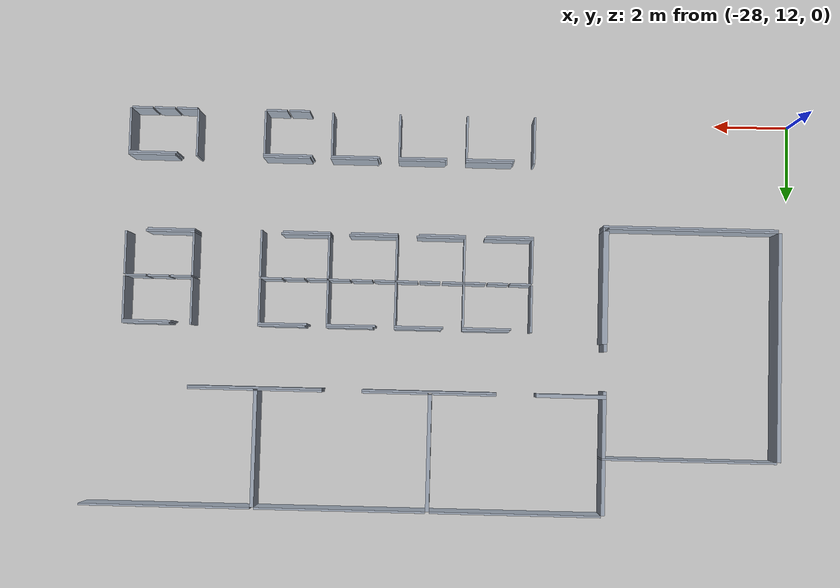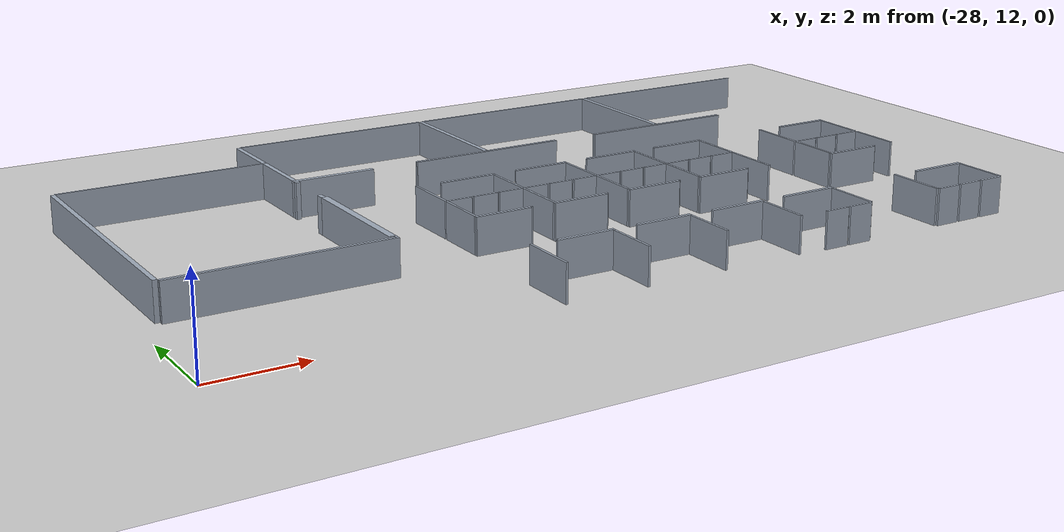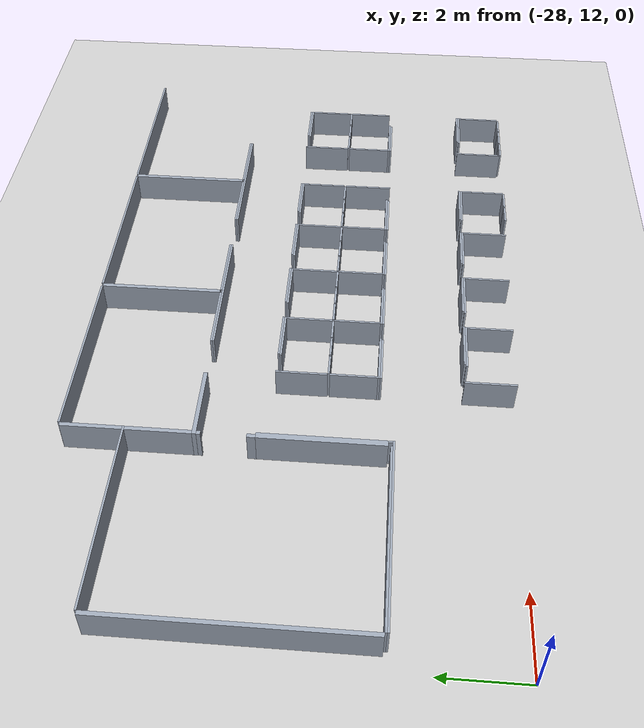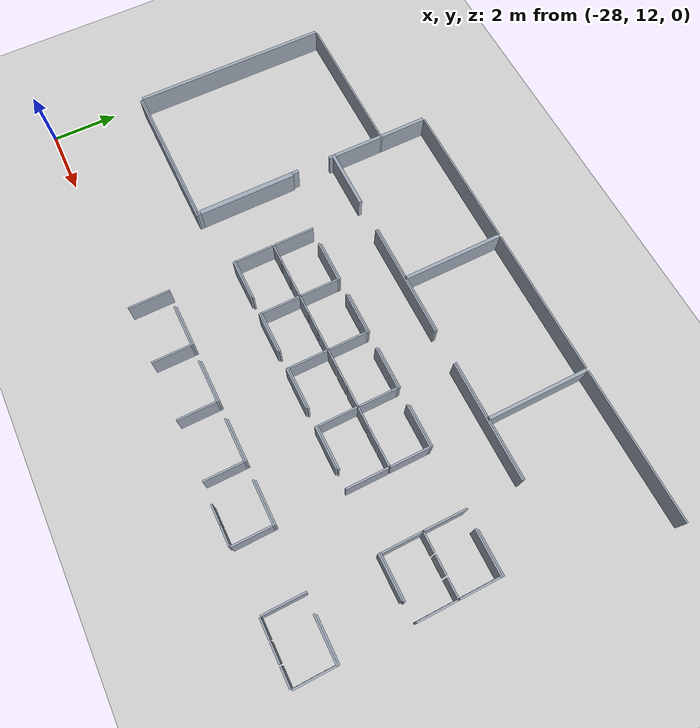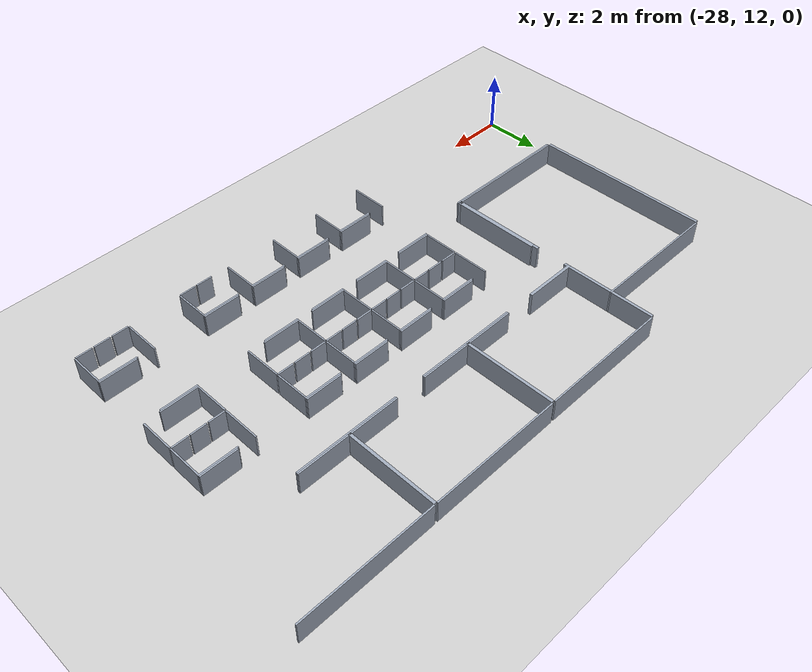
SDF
<sdf version="1.6">
 <world name="default">
  <include><uri>model://ground_plane</uri></include>
  <include><uri>model://sun</uri></include>
  <model name="slam_office_obstacles">
   <static>true</static>
   <link name="wall_0">
    <pose>-20.7000 22.5750 0.4 0 0 0</pose>
    <collision name="collision"><geometry><box><size>4.5000 0.0500 0.8</size></box></geometry></collision>
    <visual name="visual">
     <geometry><box><size>4.5000 0.0500 0.8</size></box></geometry>
     <material><ambient>0.62 0.66 0.72 1</ambient><diffuse>0.62 0.66 0.72 1</diffuse></material>
    </visual>
   </link>
   <link name="wall_1">
    <pose>-16.1000 22.5750 0.4 0 0 0</pose>
    <collision name="collision"><geometry><box><size>4.5000 0.0500 0.8</size></box></geometry></collision>
    <visual name="visual">
     <geometry><box><size>4.5000 0.0500 0.8</size></box></geometry>
     <material><ambient>0.62 0.66 0.72 1</ambient><diffuse>0.62 0.66 0.72 1</diffuse></material>
    </visual>
   </link>
   <link name="wall_2">
    <pose>-11.5000 22.5750 0.4 0 0 0</pose>
    <collision name="collision"><geometry><box><size>4.5000 0.0500 0.8</size></box></geometry></collision>
    <visual name="visual">
     <geometry><box><size>4.5000 0.0500 0.8</size></box></geometry>
     <material><ambient>0.62 0.66 0.72 1</ambient><diffuse>0.62 0.66 0.72 1</diffuse></material>
    </visual>
   </link>
   <link name="wall_9">
    <pose>-23.0000 21.8250 0.4 0 0 0</pose>
    <collision name="collision"><geometry><box><size>0.1000 1.4500 0.8</size></box></geometry></collision>
    <visual name="visual">
     <geometry><box><size>0.1000 1.4500 0.8</size></box></geometry>
     <material><ambient>0.62 0.66 0.72 1</ambient><diffuse>0.62 0.66 0.72 1</diffuse></material>
    </visual>
   </link>
   <link name="wall_10">
    <pose>-25.2500 21.0750 0.4 0 0 0</pose>
    <collision name="collision"><geometry><box><size>4.6000 0.0500 0.8</size></box></geometry></collision>
    <visual name="visual">
     <geometry><box><size>4.6000 0.0500 0.8</size></box></geometry>
     <material><ambient>0.62 0.66 0.72 1</ambient><diffuse>0.62 0.66 0.72 1</diffuse></material>
    </visual>
   </link>
   <link name="wall_11">
    <pose>-18.4000 21.0250 0.4 0 0 0</pose>
    <collision name="collision"><geometry><box><size>0.1000 3.0500 0.8</size></box></geometry></collision>
    <visual name="visual">
     <geometry><box><size>0.1000 3.0500 0.8</size></box></geometry>
     <material><ambient>0.62 0.66 0.72 1</ambient><diffuse>0.62 0.66 0.72 1</diffuse></material>
    </visual>
   </link>
   <link name="wall_12">
    <pose>-13.8000 21.0250 0.4 0 0 0</pose>
    <collision name="collision"><geometry><box><size>0.1000 3.0500 0.8</size></box></geometry></collision>
    <visual name="visual">
     <geometry><box><size>0.1000 3.0500 0.8</size></box></geometry>
     <material><ambient>0.62 0.66 0.72 1</ambient><diffuse>0.62 0.66 0.72 1</diffuse></material>
    </visual>
   </link>
   <link name="wall_19">
    <pose>-23.0000 20.2750 0.4 0 0 0</pose>
    <collision name="collision"><geometry><box><size>0.1000 1.5500 0.8</size></box></geometry></collision>
    <visual name="visual">
     <geometry><box><size>0.1000 1.5500 0.8</size></box></geometry>
     <material><ambient>0.62 0.66 0.72 1</ambient><diffuse>0.62 0.66 0.72 1</diffuse></material>
    </visual>
   </link>
   <link name="wall_20">
    <pose>-19.3000 19.4750 0.4 0 0 0</pose>
    <collision name="collision"><geometry><box><size>1.7000 0.0500 0.8</size></box></geometry></collision>
    <visual name="visual">
     <geometry><box><size>1.7000 0.0500 0.8</size></box></geometry>
     <material><ambient>0.62 0.66 0.72 1</ambient><diffuse>0.62 0.66 0.72 1</diffuse></material>
    </visual>
   </link>
   <link name="wall_21">
    <pose>-17.4750 19.4750 0.4 0 0 0</pose>
    <collision name="collision"><geometry><box><size>1.7500 0.0500 0.8</size></box></geometry></collision>
    <visual name="visual">
     <geometry><box><size>1.7500 0.0500 0.8</size></box></geometry>
     <material><ambient>0.62 0.66 0.72 1</ambient><diffuse>0.62 0.66 0.72 1</diffuse></material>
    </visual>
   </link>
   <link name="wall_22">
    <pose>-14.7000 19.4750 0.4 0 0 0</pose>
    <collision name="collision"><geometry><box><size>1.7000 0.0500 0.8</size></box></geometry></collision>
    <visual name="visual">
     <geometry><box><size>1.7000 0.0500 0.8</size></box></geometry>
     <material><ambient>0.62 0.66 0.72 1</ambient><diffuse>0.62 0.66 0.72 1</diffuse></material>
    </visual>
   </link>
   <link name="wall_23">
    <pose>-12.8750 19.4750 0.4 0 0 0</pose>
    <collision name="collision"><geometry><box><size>1.7500 0.0500 0.8</size></box></geometry></collision>
    <visual name="visual">
     <geometry><box><size>1.7500 0.0500 0.8</size></box></geometry>
     <material><ambient>0.62 0.66 0.72 1</ambient><diffuse>0.62 0.66 0.72 1</diffuse></material>
    </visual>
   </link>
   <link name="wall_34">
    <pose>-22.1250 19.4500 0.4 0 0 0</pose>
    <collision name="collision"><geometry><box><size>1.8500 0.1000 0.8</size></box></geometry></collision>
    <visual name="visual">
     <geometry><box><size>1.8500 0.1000 0.8</size></box></geometry>
     <material><ambient>0.62 0.66 0.72 1</ambient><diffuse>0.62 0.66 0.72 1</diffuse></material>
    </visual>
   </link>
   <link name="wall_36">
    <pose>-18.3750 19.4250 0.4 0 0 0</pose>
    <collision name="collision"><geometry><box><size>3.5500 0.0500 0.8</size></box></geometry></collision>
    <visual name="visual">
     <geometry><box><size>3.5500 0.0500 0.8</size></box></geometry>
     <material><ambient>0.62 0.66 0.72 1</ambient><diffuse>0.62 0.66 0.72 1</diffuse></material>
    </visual>
   </link>
   <link name="wall_37">
    <pose>-13.7750 19.4250 0.4 0 0 0</pose>
    <collision name="collision"><geometry><box><size>3.5500 0.0500 0.8</size></box></geometry></collision>
    <visual name="visual">
     <geometry><box><size>3.5500 0.0500 0.8</size></box></geometry>
     <material><ambient>0.62 0.66 0.72 1</ambient><diffuse>0.62 0.66 0.72 1</diffuse></material>
    </visual>
   </link>
   <link name="wall_43">
    <pose>-23.0000 19.3500 0.4 0 0 0</pose>
    <collision name="collision"><geometry><box><size>0.1000 0.1000 0.8</size></box></geometry></collision>
    <visual name="visual">
     <geometry><box><size>0.1000 0.1000 0.8</size></box></geometry>
     <material><ambient>0.62 0.66 0.72 1</ambient><diffuse>0.62 0.66 0.72 1</diffuse></material>
    </visual>
   </link>
   <link name="wall_44">
    <pose>-23.0000 18.1500 0.4 0 0 0</pose>
    <collision name="collision"><geometry><box><size>0.1000 0.2000 0.8</size></box></geometry></collision>
    <visual name="visual">
     <geometry><box><size>0.1000 0.2000 0.8</size></box></geometry>
     <material><ambient>0.62 0.66 0.72 1</ambient><diffuse>0.62 0.66 0.72 1</diffuse></material>
    </visual>
   </link>
   <link name="wall_45">
    <pose>-19.8250 17.7750 0.4 0 0 0</pose>
    <collision name="collision"><geometry><box><size>1.2500 0.0500 0.8</size></box></geometry></collision>
    <visual name="visual">
     <geometry><box><size>1.2500 0.0500 0.8</size></box></geometry>
     <material><ambient>0.62 0.66 0.72 1</ambient><diffuse>0.62 0.66 0.72 1</diffuse></material>
    </visual>
   </link>
   <link name="wall_46">
    <pose>-18.0250 17.7750 0.4 0 0 0</pose>
    <collision name="collision"><geometry><box><size>1.2500 0.0500 0.8</size></box></geometry></collision>
    <visual name="visual">
     <geometry><box><size>1.2500 0.0500 0.8</size></box></geometry>
     <material><ambient>0.62 0.66 0.72 1</ambient><diffuse>0.62 0.66 0.72 1</diffuse></material>
    </visual>
   </link>
   <link name="wall_47">
    <pose>-16.2250 17.7750 0.4 0 0 0</pose>
    <collision name="collision"><geometry><box><size>1.2500 0.0500 0.8</size></box></geometry></collision>
    <visual name="visual">
     <geometry><box><size>1.2500 0.0500 0.8</size></box></geometry>
     <material><ambient>0.62 0.66 0.72 1</ambient><diffuse>0.62 0.66 0.72 1</diffuse></material>
    </visual>
   </link>
   <link name="wall_48">
    <pose>-14.4250 17.7750 0.4 0 0 0</pose>
    <collision name="collision"><geometry><box><size>1.2500 0.0500 0.8</size></box></geometry></collision>
    <visual name="visual">
     <geometry><box><size>1.2500 0.0500 0.8</size></box></geometry>
     <material><ambient>0.62 0.66 0.72 1</ambient><diffuse>0.62 0.66 0.72 1</diffuse></material>
    </visual>
   </link>
   <link name="wall_49">
    <pose>-10.8250 17.7750 0.4 0 0 0</pose>
    <collision name="collision"><geometry><box><size>1.2500 0.0500 0.8</size></box></geometry></collision>
    <visual name="visual">
     <geometry><box><size>1.2500 0.0500 0.8</size></box></geometry>
     <material><ambient>0.62 0.66 0.72 1</ambient><diffuse>0.62 0.66 0.72 1</diffuse></material>
    </visual>
   </link>
   <link name="wall_52">
    <pose>-19.8500 17.7250 0.4 0 0 0</pose>
    <collision name="collision"><geometry><box><size>1.3000 0.0500 0.8</size></box></geometry></collision>
    <visual name="visual">
     <geometry><box><size>1.3000 0.0500 0.8</size></box></geometry>
     <material><ambient>0.62 0.66 0.72 1</ambient><diffuse>0.62 0.66 0.72 1</diffuse></material>
    </visual>
   </link>
   <link name="wall_53">
    <pose>-18.0500 17.7250 0.4 0 0 0</pose>
    <collision name="collision"><geometry><box><size>1.3000 0.0500 0.8</size></box></geometry></collision>
    <visual name="visual">
     <geometry><box><size>1.3000 0.0500 0.8</size></box></geometry>
     <material><ambient>0.62 0.66 0.72 1</ambient><diffuse>0.62 0.66 0.72 1</diffuse></material>
    </visual>
   </link>
   <link name="wall_54">
    <pose>-16.2500 17.7250 0.4 0 0 0</pose>
    <collision name="collision"><geometry><box><size>1.3000 0.0500 0.8</size></box></geometry></collision>
    <visual name="visual">
     <geometry><box><size>1.3000 0.0500 0.8</size></box></geometry>
     <material><ambient>0.62 0.66 0.72 1</ambient><diffuse>0.62 0.66 0.72 1</diffuse></material>
    </visual>
   </link>
   <link name="wall_55">
    <pose>-14.4500 17.7250 0.4 0 0 0</pose>
    <collision name="collision"><geometry><box><size>1.3000 0.0500 0.8</size></box></geometry></collision>
    <visual name="visual">
     <geometry><box><size>1.3000 0.0500 0.8</size></box></geometry>
     <material><ambient>0.62 0.66 0.72 1</ambient><diffuse>0.62 0.66 0.72 1</diffuse></material>
    </visual>
   </link>
   <link name="wall_56">
    <pose>-10.8500 17.7250 0.4 0 0 0</pose>
    <collision name="collision"><geometry><box><size>1.3000 0.0500 0.8</size></box></geometry></collision>
    <visual name="visual">
     <geometry><box><size>1.3000 0.0500 0.8</size></box></geometry>
     <material><ambient>0.62 0.66 0.72 1</ambient><diffuse>0.62 0.66 0.72 1</diffuse></material>
    </visual>
   </link>
   <link name="wall_64">
    <pose>-21.0250 17.1750 0.4 0 0 0</pose>
    <collision name="collision"><geometry><box><size>0.0500 1.2500 0.8</size></box></geometry></collision>
    <visual name="visual">
     <geometry><box><size>0.0500 1.2500 0.8</size></box></geometry>
     <material><ambient>0.62 0.66 0.72 1</ambient><diffuse>0.62 0.66 0.72 1</diffuse></material>
    </visual>
   </link>
   <link name="wall_65">
    <pose>-12.0250 17.1750 0.4 0 0 0</pose>
    <collision name="collision"><geometry><box><size>0.0500 1.2500 0.8</size></box></geometry></collision>
    <visual name="visual">
     <geometry><box><size>0.0500 1.2500 0.8</size></box></geometry>
     <material><ambient>0.62 0.66 0.72 1</ambient><diffuse>0.62 0.66 0.72 1</diffuse></material>
    </visual>
   </link>
   <link name="wall_66">
    <pose>-19.2250 17.1250 0.4 0 0 0</pose>
    <collision name="collision"><geometry><box><size>0.0500 1.1500 0.8</size></box></geometry></collision>
    <visual name="visual">
     <geometry><box><size>0.0500 1.1500 0.8</size></box></geometry>
     <material><ambient>0.62 0.66 0.72 1</ambient><diffuse>0.62 0.66 0.72 1</diffuse></material>
    </visual>
   </link>
   <link name="wall_67">
    <pose>-17.4250 17.1250 0.4 0 0 0</pose>
    <collision name="collision"><geometry><box><size>0.0500 1.1500 0.8</size></box></geometry></collision>
    <visual name="visual">
     <geometry><box><size>0.0500 1.1500 0.8</size></box></geometry>
     <material><ambient>0.62 0.66 0.72 1</ambient><diffuse>0.62 0.66 0.72 1</diffuse></material>
    </visual>
   </link>
   <link name="wall_68">
    <pose>-15.6250 17.1250 0.4 0 0 0</pose>
    <collision name="collision"><geometry><box><size>0.0500 1.1500 0.8</size></box></geometry></collision>
    <visual name="visual">
     <geometry><box><size>0.0500 1.1500 0.8</size></box></geometry>
     <material><ambient>0.62 0.66 0.72 1</ambient><diffuse>0.62 0.66 0.72 1</diffuse></material>
    </visual>
   </link>
   <link name="wall_69">
    <pose>-13.8250 17.1250 0.4 0 0 0</pose>
    <collision name="collision"><geometry><box><size>0.0500 1.1500 0.8</size></box></geometry></collision>
    <visual name="visual">
     <geometry><box><size>0.0500 1.1500 0.8</size></box></geometry>
     <material><ambient>0.62 0.66 0.72 1</ambient><diffuse>0.62 0.66 0.72 1</diffuse></material>
    </visual>
   </link>
   <link name="wall_70">
    <pose>-10.2250 17.1250 0.4 0 0 0</pose>
    <collision name="collision"><geometry><box><size>0.0500 1.1500 0.8</size></box></geometry></collision>
    <visual name="visual">
     <geometry><box><size>0.0500 1.1500 0.8</size></box></geometry>
     <material><ambient>0.62 0.66 0.72 1</ambient><diffuse>0.62 0.66 0.72 1</diffuse></material>
    </visual>
   </link>
   <link name="wall_75">
    <pose>-20.7250 16.5250 0.4 0 0 0</pose>
    <collision name="collision"><geometry><box><size>0.5500 0.0500 0.8</size></box></geometry></collision>
    <visual name="visual">
     <geometry><box><size>0.5500 0.0500 0.8</size></box></geometry>
     <material><ambient>0.62 0.66 0.72 1</ambient><diffuse>0.62 0.66 0.72 1</diffuse></material>
    </visual>
   </link>
   <link name="wall_76">
    <pose>-20.1250 16.5250 0.4 0 0 0</pose>
    <collision name="collision"><geometry><box><size>0.5500 0.0500 0.8</size></box></geometry></collision>
    <visual name="visual">
     <geometry><box><size>0.5500 0.0500 0.8</size></box></geometry>
     <material><ambient>0.62 0.66 0.72 1</ambient><diffuse>0.62 0.66 0.72 1</diffuse></material>
    </visual>
   </link>
   <link name="wall_77">
    <pose>-19.5250 16.5250 0.4 0 0 0</pose>
    <collision name="collision"><geometry><box><size>0.5500 0.0500 0.8</size></box></geometry></collision>
    <visual name="visual">
     <geometry><box><size>0.5500 0.0500 0.8</size></box></geometry>
     <material><ambient>0.62 0.66 0.72 1</ambient><diffuse>0.62 0.66 0.72 1</diffuse></material>
    </visual>
   </link>
   <link name="wall_78">
    <pose>-18.9250 16.5250 0.4 0 0 0</pose>
    <collision name="collision"><geometry><box><size>0.5500 0.0500 0.8</size></box></geometry></collision>
    <visual name="visual">
     <geometry><box><size>0.5500 0.0500 0.8</size></box></geometry>
     <material><ambient>0.62 0.66 0.72 1</ambient><diffuse>0.62 0.66 0.72 1</diffuse></material>
    </visual>
   </link>
   <link name="wall_79">
    <pose>-18.3250 16.5250 0.4 0 0 0</pose>
    <collision name="collision"><geometry><box><size>0.5500 0.0500 0.8</size></box></geometry></collision>
    <visual name="visual">
     <geometry><box><size>0.5500 0.0500 0.8</size></box></geometry>
     <material><ambient>0.62 0.66 0.72 1</ambient><diffuse>0.62 0.66 0.72 1</diffuse></material>
    </visual>
   </link>
   <link name="wall_80">
    <pose>-17.7250 16.5250 0.4 0 0 0</pose>
    <collision name="collision"><geometry><box><size>0.5500 0.0500 0.8</size></box></geometry></collision>
    <visual name="visual">
     <geometry><box><size>0.5500 0.0500 0.8</size></box></geometry>
     <material><ambient>0.62 0.66 0.72 1</ambient><diffuse>0.62 0.66 0.72 1</diffuse></material>
    </visual>
   </link>
   <link name="wall_81">
    <pose>-17.1250 16.5250 0.4 0 0 0</pose>
    <collision name="collision"><geometry><box><size>0.5500 0.0500 0.8</size></box></geometry></collision>
    <visual name="visual">
     <geometry><box><size>0.5500 0.0500 0.8</size></box></geometry>
     <material><ambient>0.62 0.66 0.72 1</ambient><diffuse>0.62 0.66 0.72 1</diffuse></material>
    </visual>
   </link>
   <link name="wall_82">
    <pose>-16.5250 16.5250 0.4 0 0 0</pose>
    <collision name="collision"><geometry><box><size>0.5500 0.0500 0.8</size></box></geometry></collision>
    <visual name="visual">
     <geometry><box><size>0.5500 0.0500 0.8</size></box></geometry>
     <material><ambient>0.62 0.66 0.72 1</ambient><diffuse>0.62 0.66 0.72 1</diffuse></material>
    </visual>
   </link>
   <link name="wall_83">
    <pose>-15.9250 16.5250 0.4 0 0 0</pose>
    <collision name="collision"><geometry><box><size>0.5500 0.0500 0.8</size></box></geometry></collision>
    <visual name="visual">
     <geometry><box><size>0.5500 0.0500 0.8</size></box></geometry>
     <material><ambient>0.62 0.66 0.72 1</ambient><diffuse>0.62 0.66 0.72 1</diffuse></material>
    </visual>
   </link>
   <link name="wall_84">
    <pose>-15.3250 16.5250 0.4 0 0 0</pose>
    <collision name="collision"><geometry><box><size>0.5500 0.0500 0.8</size></box></geometry></collision>
    <visual name="visual">
     <geometry><box><size>0.5500 0.0500 0.8</size></box></geometry>
     <material><ambient>0.62 0.66 0.72 1</ambient><diffuse>0.62 0.66 0.72 1</diffuse></material>
    </visual>
   </link>
   <link name="wall_85">
    <pose>-14.7250 16.5250 0.4 0 0 0</pose>
    <collision name="collision"><geometry><box><size>0.5500 0.0500 0.8</size></box></geometry></collision>
    <visual name="visual">
     <geometry><box><size>0.5500 0.0500 0.8</size></box></geometry>
     <material><ambient>0.62 0.66 0.72 1</ambient><diffuse>0.62 0.66 0.72 1</diffuse></material>
    </visual>
   </link>
   <link name="wall_86">
    <pose>-14.1250 16.5250 0.4 0 0 0</pose>
    <collision name="collision"><geometry><box><size>0.5500 0.0500 0.8</size></box></geometry></collision>
    <visual name="visual">
     <geometry><box><size>0.5500 0.0500 0.8</size></box></geometry>
     <material><ambient>0.62 0.66 0.72 1</ambient><diffuse>0.62 0.66 0.72 1</diffuse></material>
    </visual>
   </link>
   <link name="wall_87">
    <pose>-11.7250 16.5250 0.4 0 0 0</pose>
    <collision name="collision"><geometry><box><size>0.5500 0.0500 0.8</size></box></geometry></collision>
    <visual name="visual">
     <geometry><box><size>0.5500 0.0500 0.8</size></box></geometry>
     <material><ambient>0.62 0.66 0.72 1</ambient><diffuse>0.62 0.66 0.72 1</diffuse></material>
    </visual>
   </link>
   <link name="wall_88">
    <pose>-11.1250 16.5250 0.4 0 0 0</pose>
    <collision name="collision"><geometry><box><size>0.5500 0.0500 0.8</size></box></geometry></collision>
    <visual name="visual">
     <geometry><box><size>0.5500 0.0500 0.8</size></box></geometry>
     <material><ambient>0.62 0.66 0.72 1</ambient><diffuse>0.62 0.66 0.72 1</diffuse></material>
    </visual>
   </link>
   <link name="wall_89">
    <pose>-10.5250 16.5250 0.4 0 0 0</pose>
    <collision name="collision"><geometry><box><size>0.5500 0.0500 0.8</size></box></geometry></collision>
    <visual name="visual">
     <geometry><box><size>0.5500 0.0500 0.8</size></box></geometry>
     <material><ambient>0.62 0.66 0.72 1</ambient><diffuse>0.62 0.66 0.72 1</diffuse></material>
    </visual>
   </link>
   <link name="wall_103">
    <pose>-21.0250 15.9250 0.4 0 0 0</pose>
    <collision name="collision"><geometry><box><size>0.0500 1.1500 0.8</size></box></geometry></collision>
    <visual name="visual">
     <geometry><box><size>0.0500 1.1500 0.8</size></box></geometry>
     <material><ambient>0.62 0.66 0.72 1</ambient><diffuse>0.62 0.66 0.72 1</diffuse></material>
    </visual>
   </link>
   <link name="wall_104">
    <pose>-19.2250 15.9250 0.4 0 0 0</pose>
    <collision name="collision"><geometry><box><size>0.0500 1.1500 0.8</size></box></geometry></collision>
    <visual name="visual">
     <geometry><box><size>0.0500 1.1500 0.8</size></box></geometry>
     <material><ambient>0.62 0.66 0.72 1</ambient><diffuse>0.62 0.66 0.72 1</diffuse></material>
    </visual>
   </link>
   <link name="wall_105">
    <pose>-17.4250 15.9250 0.4 0 0 0</pose>
    <collision name="collision"><geometry><box><size>0.0500 1.1500 0.8</size></box></geometry></collision>
    <visual name="visual">
     <geometry><box><size>0.0500 1.1500 0.8</size></box></geometry>
     <material><ambient>0.62 0.66 0.72 1</ambient><diffuse>0.62 0.66 0.72 1</diffuse></material>
    </visual>
   </link>
   <link name="wall_106">
    <pose>-15.6250 15.9250 0.4 0 0 0</pose>
    <collision name="collision"><geometry><box><size>0.0500 1.1500 0.8</size></box></geometry></collision>
    <visual name="visual">
     <geometry><box><size>0.0500 1.1500 0.8</size></box></geometry>
     <material><ambient>0.62 0.66 0.72 1</ambient><diffuse>0.62 0.66 0.72 1</diffuse></material>
    </visual>
   </link>
   <link name="wall_107">
    <pose>-12.0250 15.9250 0.4 0 0 0</pose>
    <collision name="collision"><geometry><box><size>0.0500 1.1500 0.8</size></box></geometry></collision>
    <visual name="visual">
     <geometry><box><size>0.0500 1.1500 0.8</size></box></geometry>
     <material><ambient>0.62 0.66 0.72 1</ambient><diffuse>0.62 0.66 0.72 1</diffuse></material>
    </visual>
   </link>
   <link name="wall_108">
    <pose>-10.2250 15.9250 0.4 0 0 0</pose>
    <collision name="collision"><geometry><box><size>0.0500 1.1500 0.8</size></box></geometry></collision>
    <visual name="visual">
     <geometry><box><size>0.0500 1.1500 0.8</size></box></geometry>
     <material><ambient>0.62 0.66 0.72 1</ambient><diffuse>0.62 0.66 0.72 1</diffuse></material>
    </visual>
   </link>
   <link name="wall_110">
    <pose>-20.4000 15.3250 0.4 0 0 0</pose>
    <collision name="collision"><geometry><box><size>1.3000 0.0500 0.8</size></box></geometry></collision>
    <visual name="visual">
     <geometry><box><size>1.3000 0.0500 0.8</size></box></geometry>
     <material><ambient>0.62 0.66 0.72 1</ambient><diffuse>0.62 0.66 0.72 1</diffuse></material>
    </visual>
   </link>
   <link name="wall_111">
    <pose>-18.6000 15.3250 0.4 0 0 0</pose>
    <collision name="collision"><geometry><box><size>1.3000 0.0500 0.8</size></box></geometry></collision>
    <visual name="visual">
     <geometry><box><size>1.3000 0.0500 0.8</size></box></geometry>
     <material><ambient>0.62 0.66 0.72 1</ambient><diffuse>0.62 0.66 0.72 1</diffuse></material>
    </visual>
   </link>
   <link name="wall_112">
    <pose>-16.8000 15.3250 0.4 0 0 0</pose>
    <collision name="collision"><geometry><box><size>1.3000 0.0500 0.8</size></box></geometry></collision>
    <visual name="visual">
     <geometry><box><size>1.3000 0.0500 0.8</size></box></geometry>
     <material><ambient>0.62 0.66 0.72 1</ambient><diffuse>0.62 0.66 0.72 1</diffuse></material>
    </visual>
   </link>
   <link name="wall_113">
    <pose>-15.0000 15.3250 0.4 0 0 0</pose>
    <collision name="collision"><geometry><box><size>1.3000 0.0500 0.8</size></box></geometry></collision>
    <visual name="visual">
     <geometry><box><size>1.3000 0.0500 0.8</size></box></geometry>
     <material><ambient>0.62 0.66 0.72 1</ambient><diffuse>0.62 0.66 0.72 1</diffuse></material>
    </visual>
   </link>
   <link name="wall_114">
    <pose>-11.4000 15.3250 0.4 0 0 0</pose>
    <collision name="collision"><geometry><box><size>1.3000 0.0500 0.8</size></box></geometry></collision>
    <visual name="visual">
     <geometry><box><size>1.3000 0.0500 0.8</size></box></geometry>
     <material><ambient>0.62 0.66 0.72 1</ambient><diffuse>0.62 0.66 0.72 1</diffuse></material>
    </visual>
   </link>
   <link name="wall_117">
    <pose>-13.8250 15.8750 0.4 0 0 0</pose>
    <collision name="collision"><geometry><box><size>0.0500 1.2500 0.8</size></box></geometry></collision>
    <visual name="visual">
     <geometry><box><size>0.0500 1.2500 0.8</size></box></geometry>
     <material><ambient>0.62 0.66 0.72 1</ambient><diffuse>0.62 0.66 0.72 1</diffuse></material>
    </visual>
   </link>
   <link name="wall_119">
    <pose>-20.4250 15.2750 0.4 0 0 0</pose>
    <collision name="collision"><geometry><box><size>1.2500 0.0500 0.8</size></box></geometry></collision>
    <visual name="visual">
     <geometry><box><size>1.2500 0.0500 0.8</size></box></geometry>
     <material><ambient>0.62 0.66 0.72 1</ambient><diffuse>0.62 0.66 0.72 1</diffuse></material>
    </visual>
   </link>
   <link name="wall_120">
    <pose>-18.6250 15.2750 0.4 0 0 0</pose>
    <collision name="collision"><geometry><box><size>1.2500 0.0500 0.8</size></box></geometry></collision>
    <visual name="visual">
     <geometry><box><size>1.2500 0.0500 0.8</size></box></geometry>
     <material><ambient>0.62 0.66 0.72 1</ambient><diffuse>0.62 0.66 0.72 1</diffuse></material>
    </visual>
   </link>
   <link name="wall_121">
    <pose>-16.8250 15.2750 0.4 0 0 0</pose>
    <collision name="collision"><geometry><box><size>1.2500 0.0500 0.8</size></box></geometry></collision>
    <visual name="visual">
     <geometry><box><size>1.2500 0.0500 0.8</size></box></geometry>
     <material><ambient>0.62 0.66 0.72 1</ambient><diffuse>0.62 0.66 0.72 1</diffuse></material>
    </visual>
   </link>
   <link name="wall_122">
    <pose>-15.0250 15.2750 0.4 0 0 0</pose>
    <collision name="collision"><geometry><box><size>1.2500 0.0500 0.8</size></box></geometry></collision>
    <visual name="visual">
     <geometry><box><size>1.2500 0.0500 0.8</size></box></geometry>
     <material><ambient>0.62 0.66 0.72 1</ambient><diffuse>0.62 0.66 0.72 1</diffuse></material>
    </visual>
   </link>
   <link name="wall_123">
    <pose>-11.4250 15.2750 0.4 0 0 0</pose>
    <collision name="collision"><geometry><box><size>1.2500 0.0500 0.8</size></box></geometry></collision>
    <visual name="visual">
     <geometry><box><size>1.2500 0.0500 0.8</size></box></geometry>
     <material><ambient>0.62 0.66 0.72 1</ambient><diffuse>0.62 0.66 0.72 1</diffuse></material>
    </visual>
   </link>
   <link name="wall_127">
    <pose>-22.9750 16.5500 0.4 0 0 0</pose>
    <collision name="collision"><geometry><box><size>0.1500 3.0000 0.8</size></box></geometry></collision>
    <visual name="visual">
     <geometry><box><size>0.1500 3.0000 0.8</size></box></geometry>
     <material><ambient>0.62 0.66 0.72 1</ambient><diffuse>0.62 0.66 0.72 1</diffuse></material>
    </visual>
   </link>
   <link name="wall_128">
    <pose>-27.6000 18.0250 0.4 0 0 0</pose>
    <collision name="collision"><geometry><box><size>0.1000 6.0500 0.8</size></box></geometry></collision>
    <visual name="visual">
     <geometry><box><size>0.1000 6.0500 0.8</size></box></geometry>
     <material><ambient>0.62 0.66 0.72 1</ambient><diffuse>0.62 0.66 0.72 1</diffuse></material>
    </visual>
   </link>
   <link name="wall_129">
    <pose>-22.9250 15.0000 0.4 0 0 0</pose>
    <collision name="collision"><geometry><box><size>0.0500 0.1000 0.8</size></box></geometry></collision>
    <visual name="visual">
     <geometry><box><size>0.0500 0.1000 0.8</size></box></geometry>
     <material><ambient>0.62 0.66 0.72 1</ambient><diffuse>0.62 0.66 0.72 1</diffuse></material>
    </visual>
   </link>
   <link name="wall_130">
    <pose>-25.3000 14.9750 0.4 0 0 0</pose>
    <collision name="collision"><geometry><box><size>4.5000 0.0500 0.8</size></box></geometry></collision>
    <visual name="visual">
     <geometry><box><size>4.5000 0.0500 0.8</size></box></geometry>
     <material><ambient>0.62 0.66 0.72 1</ambient><diffuse>0.62 0.66 0.72 1</diffuse></material>
    </visual>
   </link>
   <link name="wall_132">
    <pose>-25.2250 14.9250 0.4 0 0 0</pose>
    <collision name="collision"><geometry><box><size>4.6500 0.0500 0.8</size></box></geometry></collision>
    <visual name="visual">
     <geometry><box><size>4.6500 0.0500 0.8</size></box></geometry>
     <material><ambient>0.62 0.66 0.72 1</ambient><diffuse>0.62 0.66 0.72 1</diffuse></material>
    </visual>
   </link>
   <link name="wall_146">
    <pose>-19.8250 13.2750 0.4 0 0 0</pose>
    <collision name="collision"><geometry><box><size>1.2500 0.0500 0.8</size></box></geometry></collision>
    <visual name="visual">
     <geometry><box><size>1.2500 0.0500 0.8</size></box></geometry>
     <material><ambient>0.62 0.66 0.72 1</ambient><diffuse>0.62 0.66 0.72 1</diffuse></material>
    </visual>
   </link>
   <link name="wall_147">
    <pose>-18.0250 13.2750 0.4 0 0 0</pose>
    <collision name="collision"><geometry><box><size>1.2500 0.0500 0.8</size></box></geometry></collision>
    <visual name="visual">
     <geometry><box><size>1.2500 0.0500 0.8</size></box></geometry>
     <material><ambient>0.62 0.66 0.72 1</ambient><diffuse>0.62 0.66 0.72 1</diffuse></material>
    </visual>
   </link>
   <link name="wall_148">
    <pose>-16.2250 13.2750 0.4 0 0 0</pose>
    <collision name="collision"><geometry><box><size>1.2500 0.0500 0.8</size></box></geometry></collision>
    <visual name="visual">
     <geometry><box><size>1.2500 0.0500 0.8</size></box></geometry>
     <material><ambient>0.62 0.66 0.72 1</ambient><diffuse>0.62 0.66 0.72 1</diffuse></material>
    </visual>
   </link>
   <link name="wall_149">
    <pose>-14.4250 13.2750 0.4 0 0 0</pose>
    <collision name="collision"><geometry><box><size>1.2500 0.0500 0.8</size></box></geometry></collision>
    <visual name="visual">
     <geometry><box><size>1.2500 0.0500 0.8</size></box></geometry>
     <material><ambient>0.62 0.66 0.72 1</ambient><diffuse>0.62 0.66 0.72 1</diffuse></material>
    </visual>
   </link>
   <link name="wall_150">
    <pose>-10.8250 13.2750 0.4 0 0 0</pose>
    <collision name="collision"><geometry><box><size>1.2500 0.0500 0.8</size></box></geometry></collision>
    <visual name="visual">
     <geometry><box><size>1.2500 0.0500 0.8</size></box></geometry>
     <material><ambient>0.62 0.66 0.72 1</ambient><diffuse>0.62 0.66 0.72 1</diffuse></material>
    </visual>
   </link>
   <link name="wall_153">
    <pose>-19.8500 13.2250 0.4 0 0 0</pose>
    <collision name="collision"><geometry><box><size>1.3000 0.0500 0.8</size></box></geometry></collision>
    <visual name="visual">
     <geometry><box><size>1.3000 0.0500 0.8</size></box></geometry>
     <material><ambient>0.62 0.66 0.72 1</ambient><diffuse>0.62 0.66 0.72 1</diffuse></material>
    </visual>
   </link>
   <link name="wall_154">
    <pose>-18.0500 13.2250 0.4 0 0 0</pose>
    <collision name="collision"><geometry><box><size>1.3000 0.0500 0.8</size></box></geometry></collision>
    <visual name="visual">
     <geometry><box><size>1.3000 0.0500 0.8</size></box></geometry>
     <material><ambient>0.62 0.66 0.72 1</ambient><diffuse>0.62 0.66 0.72 1</diffuse></material>
    </visual>
   </link>
   <link name="wall_155">
    <pose>-16.2500 13.2250 0.4 0 0 0</pose>
    <collision name="collision"><geometry><box><size>1.3000 0.0500 0.8</size></box></geometry></collision>
    <visual name="visual">
     <geometry><box><size>1.3000 0.0500 0.8</size></box></geometry>
     <material><ambient>0.62 0.66 0.72 1</ambient><diffuse>0.62 0.66 0.72 1</diffuse></material>
    </visual>
   </link>
   <link name="wall_156">
    <pose>-14.4500 13.2250 0.4 0 0 0</pose>
    <collision name="collision"><geometry><box><size>1.3000 0.0500 0.8</size></box></geometry></collision>
    <visual name="visual">
     <geometry><box><size>1.3000 0.0500 0.8</size></box></geometry>
     <material><ambient>0.62 0.66 0.72 1</ambient><diffuse>0.62 0.66 0.72 1</diffuse></material>
    </visual>
   </link>
   <link name="wall_157">
    <pose>-10.8500 13.2250 0.4 0 0 0</pose>
    <collision name="collision"><geometry><box><size>1.3000 0.0500 0.8</size></box></geometry></collision>
    <visual name="visual">
     <geometry><box><size>1.3000 0.0500 0.8</size></box></geometry>
     <material><ambient>0.62 0.66 0.72 1</ambient><diffuse>0.62 0.66 0.72 1</diffuse></material>
    </visual>
   </link>
   <link name="wall_166">
    <pose>-21.0250 12.6750 0.4 0 0 0</pose>
    <collision name="collision"><geometry><box><size>0.0500 1.2500 0.8</size></box></geometry></collision>
    <visual name="visual">
     <geometry><box><size>0.0500 1.2500 0.8</size></box></geometry>
     <material><ambient>0.62 0.66 0.72 1</ambient><diffuse>0.62 0.66 0.72 1</diffuse></material>
    </visual>
   </link>
   <link name="wall_167">
    <pose>-12.0250 12.6750 0.4 0 0 0</pose>
    <collision name="collision"><geometry><box><size>0.0500 1.2500 0.8</size></box></geometry></collision>
    <visual name="visual">
     <geometry><box><size>0.0500 1.2500 0.8</size></box></geometry>
     <material><ambient>0.62 0.66 0.72 1</ambient><diffuse>0.62 0.66 0.72 1</diffuse></material>
    </visual>
   </link>
   <link name="wall_168">
    <pose>-19.2250 12.6250 0.4 0 0 0</pose>
    <collision name="collision"><geometry><box><size>0.0500 1.1500 0.8</size></box></geometry></collision>
    <visual name="visual">
     <geometry><box><size>0.0500 1.1500 0.8</size></box></geometry>
     <material><ambient>0.62 0.66 0.72 1</ambient><diffuse>0.62 0.66 0.72 1</diffuse></material>
    </visual>
   </link>
   <link name="wall_169">
    <pose>-17.4250 12.6250 0.4 0 0 0</pose>
    <collision name="collision"><geometry><box><size>0.0500 1.1500 0.8</size></box></geometry></collision>
    <visual name="visual">
     <geometry><box><size>0.0500 1.1500 0.8</size></box></geometry>
     <material><ambient>0.62 0.66 0.72 1</ambient><diffuse>0.62 0.66 0.72 1</diffuse></material>
    </visual>
   </link>
   <link name="wall_170">
    <pose>-15.6250 12.6250 0.4 0 0 0</pose>
    <collision name="collision"><geometry><box><size>0.0500 1.1500 0.8</size></box></geometry></collision>
    <visual name="visual">
     <geometry><box><size>0.0500 1.1500 0.8</size></box></geometry>
     <material><ambient>0.62 0.66 0.72 1</ambient><diffuse>0.62 0.66 0.72 1</diffuse></material>
    </visual>
   </link>
   <link name="wall_171">
    <pose>-13.8250 12.6250 0.4 0 0 0</pose>
    <collision name="collision"><geometry><box><size>0.0500 1.1500 0.8</size></box></geometry></collision>
    <visual name="visual">
     <geometry><box><size>0.0500 1.1500 0.8</size></box></geometry>
     <material><ambient>0.62 0.66 0.72 1</ambient><diffuse>0.62 0.66 0.72 1</diffuse></material>
    </visual>
   </link>
   <link name="wall_172">
    <pose>-10.2250 12.6250 0.4 0 0 0</pose>
    <collision name="collision"><geometry><box><size>0.0500 1.1500 0.8</size></box></geometry></collision>
    <visual name="visual">
     <geometry><box><size>0.0500 1.1500 0.8</size></box></geometry>
     <material><ambient>0.62 0.66 0.72 1</ambient><diffuse>0.62 0.66 0.72 1</diffuse></material>
    </visual>
   </link>
   <link name="wall_185">
    <pose>-14.7250 12.0250 0.4 0 0 0</pose>
    <collision name="collision"><geometry><box><size>0.5500 0.0500 0.8</size></box></geometry></collision>
    <visual name="visual">
     <geometry><box><size>0.5500 0.0500 0.8</size></box></geometry>
     <material><ambient>0.62 0.66 0.72 1</ambient><diffuse>0.62 0.66 0.72 1</diffuse></material>
    </visual>
   </link>
   <link name="wall_186">
    <pose>-14.1250 12.0250 0.4 0 0 0</pose>
    <collision name="collision"><geometry><box><size>0.5500 0.0500 0.8</size></box></geometry></collision>
    <visual name="visual">
     <geometry><box><size>0.5500 0.0500 0.8</size></box></geometry>
     <material><ambient>0.62 0.66 0.72 1</ambient><diffuse>0.62 0.66 0.72 1</diffuse></material>
    </visual>
   </link>
   <link name="wall_187">
    <pose>-11.7250 12.0250 0.4 0 0 0</pose>
    <collision name="collision"><geometry><box><size>0.5500 0.0500 0.8</size></box></geometry></collision>
    <visual name="visual">
     <geometry><box><size>0.5500 0.0500 0.8</size></box></geometry>
     <material><ambient>0.62 0.66 0.72 1</ambient><diffuse>0.62 0.66 0.72 1</diffuse></material>
    </visual>
   </link>
   <link name="wall_188">
    <pose>-11.1250 12.0250 0.4 0 0 0</pose>
    <collision name="collision"><geometry><box><size>0.5500 0.0500 0.8</size></box></geometry></collision>
    <visual name="visual">
     <geometry><box><size>0.5500 0.0500 0.8</size></box></geometry>
     <material><ambient>0.62 0.66 0.72 1</ambient><diffuse>0.62 0.66 0.72 1</diffuse></material>
    </visual>
   </link>
   <link name="wall_189">
    <pose>-10.5250 12.0250 0.4 0 0 0</pose>
    <collision name="collision"><geometry><box><size>0.5500 0.0500 0.8</size></box></geometry></collision>
    <visual name="visual">
     <geometry><box><size>0.5500 0.0500 0.8</size></box></geometry>
     <material><ambient>0.62 0.66 0.72 1</ambient><diffuse>0.62 0.66 0.72 1</diffuse></material>
    </visual>
   </link>
  </model>
 </world>
</sdf>
